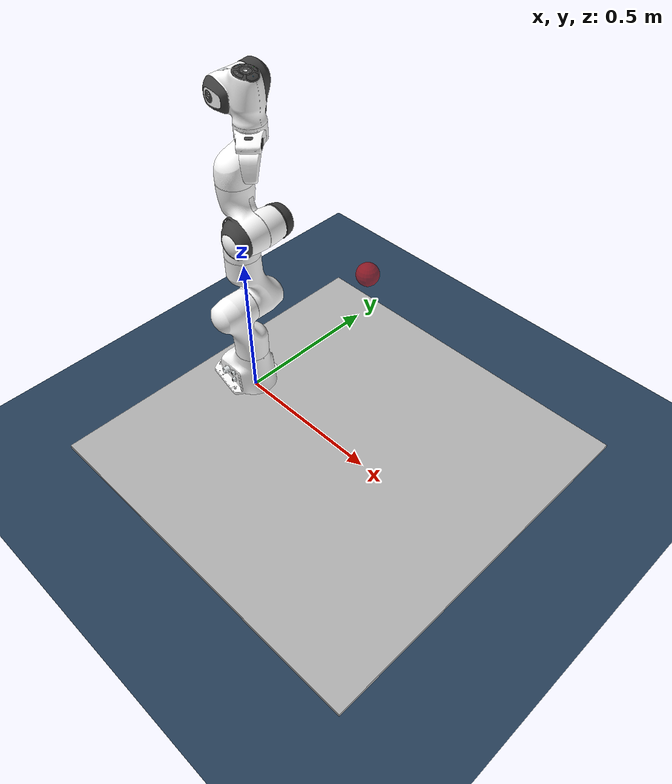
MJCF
<mujoco model="panda scene">
  <include file="../../common/skybox.xml"/>
  <include file="../../common/visual.xml"/>
  <include file="../../common/materials.xml"/>

  <statistic center="0.3 0 0.4" extent="1"/>

  <asset>
    <texture type="2d" name="groundplane" builtin="checker" mark="edge" rgb1="0.2 0.3 0.4"
        rgb2="0.1 0.2 0.3" markrgb="0.8 0.8 0.8" width="300" height="300"/>
    <material name="groundplane" texture="groundplane" texuniform="true" texrepeat="5 5"
        reflectance="0.2"/>
    <material name="table_mat" texture="table_original" />
    <texture type="cube" name="table_original" file="marble2.png" />
    <texture type="cube" name="table_easy0" file="marble.png" />
    <texture type="cube" name="table_easy1" file="metal2.png" />
    <texture type="cube" name="table_easy2" file="metal1.png" />
    <texture type="cube" name="table_easy3" file="skin.png" />
    <texture type="cube" name="table_easy4" file="light_wood_v2.png" />
    <texture type="cube" name="table_easy5" file="wood1.png" />
    <texture type="cube" name="table_easy6" file="woodb.png" />
    <texture type="cube" name="table_easy7" file="floor1.png" />
    <texture type="cube" name="table_easy8" file="granite.png" />
    <texture type="cube" name="table_easy9" file="metal.png" />
    <texture type="cube" name="table_hard0" file="city1.png" />
    <texture type="cube" name="table_hard1" file="city2.png" />
    <texture type="cube" name="table_hard2" file="city3.png" />
    <texture type="cube" name="table_hard3" file="foil.png" />
    <texture type="cube" name="table_hard4" file="silverRaw.png" />
    <texture type="cube" name="table_hard5" file="square.png" />
    <texture type="cube" name="table_hard6" file="darkwood.png" />
    <texture type="cube" name="table_hard7" file="brick1.png" />
    <texture type="cube" name="table_hard8" file="tennis.png" />
    <texture type="cube" name="table_hard9" file="wood4.png" />
  </asset>

  <worldbody>
      <light name='original' directional='false' diffuse='.7 .7 .7' specular='0.03 0.03 0.03' pos='-1 -1.0 4.0' dir='1 1.0 -4'/>

    <geom name="floor" size="2 2 0.05" type="plane" material="grid"/>

      <!-- ======= TABLE ======= -->
    <body name="table" pos="0.4 0 0">
      <geom pos="0 0 -0.01" size="0.6 0.6 0.02" type="box" rgba=".7 .7 .7 1." material="table_mat"/>
      <camera name="side_table" pos="0 -1.3 0.9" euler="1.2 0 0"/>
      <camera name="above_table" pos="1 0 1.35" euler="0 .8 1.57"/>
    </body>

    <site name="target_ball" pos="0.5 0.0 0.75" size="0.03" rgba="1 0 0 0.5" material="obj_color"/>

  </worldbody>

  <include file="panda_reach.xml"/>
</mujoco>

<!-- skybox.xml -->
<mujoco>
    <asset>
        <texture name="skybox" type="skybox" builtin="gradient" rgb1=".4 .6 .8" rgb2="0 0 0"
                 width="800" height="800" mark="random" markrgb="1 1 1"/>
    </asset>
</mujoco>

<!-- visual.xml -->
<mujoco>
    <visual>
        <headlight ambient=".4 .4 .4" diffuse=".8 .8 .8" specular="0.1 0.1 0.1"/>
        <map znear=".01"/>
        <quality shadowsize="2048"/>
    </visual>
</mujoco>

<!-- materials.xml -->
<!--
Common textures, colors and materials to be used throughout this suite. Some
materials such as xxx_highlight are activated on occurence of certain events,
for example receiving a positive reward.
-->
<mujoco>

  <asset>
    <texture name="grid" type="2d" builtin="checker" rgb1=".1 .2 .3" rgb2=".2 .3 .4" width="300" height="300" mark="edge" markrgb=".2 .3 .4"/>
    <material name="grid" texture="grid" texrepeat="1 1" texuniform="true" reflectance=".2"/>
    <material name="self" rgba=".7 .5 .3 1"/>
    <material name="self_default" rgba=".7 .5 .3 1"/>
    <material name="self_highlight" rgba="0 .5 .3 1"/>
    <material name="effector" rgba=".7 .4 .2 1"/>
    <material name="effector_default" rgba=".7 .4 .2 1"/>
    <material name="effector_highlight" rgba="0 .5 .3 1"/>
    <material name="decoration" rgba=".3 .5 .7 1"/>
    <material name="eye" rgba="0 .2 1 1"/>
    <material name="target" rgba=".6 .3 .3 1"/>
    <material name="target_default" rgba=".6 .3 .3 1"/>
    <material name="target_highlight" rgba=".6 .3 .3 .4"/>
    <material name="site" rgba=".5 .5 .5 .3"/>

<!--    for franka and unitree-->
    <material name="white" rgba="1 1 1 1"/>
    <material name="dark" specular="0" shininess="0.25" rgba="0.2 0.2 0.2 1"/>
    <material name="carbonfibre" rgba="0.25 0.25 0.25 1" specular="0" shininess="0.25"/>
    <material name="obj_color" rgba="1 0 0 1"/>
  </asset>
</mujoco>

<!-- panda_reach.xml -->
<mujoco model="panda">
  <compiler angle="radian" meshdir="assets" texturedir="assets/textures" autolimits="true"/>

  <option integrator="implicit"/>

  <default>
    <default class="panda">
      <material specular="0.5" shininess="0.25"/>
      <joint armature="0.1" damping="1" axis="0 0 1" range="-2.8973 2.8973"/>
      <general dyntype="none" biastype="affine" ctrlrange="-2.8973 2.8973" forcerange="-87 87"/>
      <default class="finger">
        <joint axis="0 1 0" type="slide" range="0 0.04"/>
      </default>

      <default class="visual">
        <geom type="mesh" contype="0" conaffinity="0" group="2"/>
      </default>
      <default class="collision">
        <geom type="mesh" group="3"/>
        <default class="fingertip_pad_collision_1">
          <geom type="box" size="0.0085 0.004 0.0085" pos="0 0.0055 0.0445"/>
        </default>
        <default class="fingertip_pad_collision_2">
          <geom type="box" size="0.003 0.002 0.003" pos="0.0055 0.002 0.05"/>
        </default>
        <default class="fingertip_pad_collision_3">
          <geom type="box" size="0.003 0.002 0.003" pos="-0.0055 0.002 0.05"/>
        </default>
        <default class="fingertip_pad_collision_4">
          <geom type="box" size="0.003 0.002 0.0035" pos="0.0055 0.002 0.0395"/>
        </default>
        <default class="fingertip_pad_collision_5">
          <geom type="box" size="0.003 0.002 0.0035" pos="-0.0055 0.002 0.0395"/>
        </default>
      </default>
    </default>
  </default>

  <asset>
    <material class="panda" name="off_white" rgba="0.901961 0.921569 0.929412 1"/>
    <material class="panda" name="black" rgba="0.25 0.25 0.25 1"/>
    <material class="panda" name="green" rgba="0 1 0 1"/>
    <material class="panda" name="light_blue" rgba="0.039216 0.541176 0.780392 1"/>

    <!-- Collision meshes -->
    <mesh name="link0_c" file="link0.stl"/>
    <mesh name="link1_c" file="link1.stl"/>
    <mesh name="link2_c" file="link2.stl"/>
    <mesh name="link3_c" file="link3.stl"/>
    <mesh name="link4_c" file="link4.stl"/>
    <mesh name="link5_c0" file="link5_collision_0.obj"/>
    <mesh name="link5_c1" file="link5_collision_1.obj"/>
    <mesh name="link5_c2" file="link5_collision_2.obj"/>
    <mesh name="link6_c" file="link6.stl"/>
    <mesh name="link7_c" file="link7.stl"/>
    <mesh name="hand_c" file="hand.stl"/>

    <!-- Visual meshes -->
    <mesh file="link0_0.obj"/>
    <mesh file="link0_1.obj"/>
    <mesh file="link0_2.obj"/>
    <mesh file="link0_3.obj"/>
    <mesh file="link0_4.obj"/>
    <mesh file="link0_5.obj"/>
    <mesh file="link0_7.obj"/>
    <mesh file="link0_8.obj"/>
    <mesh file="link0_9.obj"/>
    <mesh file="link0_10.obj"/>
    <mesh file="link0_11.obj"/>
    <mesh file="link1.obj"/>
    <mesh file="link2.obj"/>
    <mesh file="link3_0.obj"/>
    <mesh file="link3_1.obj"/>
    <mesh file="link3_2.obj"/>
    <mesh file="link3_3.obj"/>
    <mesh file="link4_0.obj"/>
    <mesh file="link4_1.obj"/>
    <mesh file="link4_2.obj"/>
    <mesh file="link4_3.obj"/>
    <mesh file="link5_0.obj"/>
    <mesh file="link5_1.obj"/>
    <mesh file="link5_2.obj"/>
    <mesh file="link6_0.obj"/>
    <mesh file="link6_1.obj"/>
    <mesh file="link6_2.obj"/>
    <mesh file="link6_3.obj"/>
    <mesh file="link6_4.obj"/>
    <mesh file="link6_5.obj"/>
    <mesh file="link6_6.obj"/>
    <mesh file="link6_7.obj"/>
    <mesh file="link6_8.obj"/>
    <mesh file="link6_9.obj"/>
    <mesh file="link6_10.obj"/>
    <mesh file="link6_11.obj"/>
    <mesh file="link6_12.obj"/>
    <mesh file="link6_13.obj"/>
    <mesh file="link6_14.obj"/>
    <mesh file="link6_15.obj"/>
    <mesh file="link6_16.obj"/>
    <mesh file="link7_0.obj"/>
    <mesh file="link7_1.obj"/>
    <mesh file="link7_2.obj"/>
    <mesh file="link7_3.obj"/>
    <mesh file="link7_4.obj"/>
    <mesh file="link7_5.obj"/>
    <mesh file="link7_6.obj"/>
    <mesh file="link7_7.obj"/>
    <mesh file="hand_0.obj"/>
    <mesh file="hand_1.obj"/>
    <mesh file="hand_2.obj"/>
    <mesh file="hand_3.obj"/>
    <mesh file="hand_4.obj"/>
    <mesh file="finger_0.obj"/>
    <mesh file="finger_1.obj"/>
  </asset>

  <worldbody>
    <light name="top" pos="0 0 2" mode="trackcom"/>
    <body name="link0" childclass="panda" pos="0 0 0.02">
      <inertial mass="0.629769" pos="-0.041018 -0.00014 0.049974"
          fullinertia="0.00315 0.00388 0.004285 8.2904e-7 0.00015 8.2299e-6"/>
      <geom mesh="link0_0" material="off_white" class="visual"/>
      <geom mesh="link0_1" material="black" class="visual"/>
      <geom mesh="link0_2" material="off_white" class="visual"/>
      <geom mesh="link0_3" material="black" class="visual"/>
      <geom mesh="link0_4" material="off_white" class="visual"/>
      <geom mesh="link0_5" material="black" class="visual"/>
      <geom mesh="link0_7" material="white" class="visual"/>
      <geom mesh="link0_8" material="white" class="visual"/>
      <geom mesh="link0_9" material="black" class="visual"/>
      <geom mesh="link0_10" material="off_white" class="visual"/>
      <geom mesh="link0_11" material="white" class="visual"/>
      <geom mesh="link0_c" class="collision"/>
      <body name="link1" pos="0 0 0.333">
        <inertial mass="4.970684" pos="0.003875 0.002081 -0.04762"
            fullinertia="0.70337 0.70661 0.0091170 -0.00013900 0.0067720 0.019169"/>
        <joint name="joint1"/>
        <geom material="white" mesh="link1" class="visual"/>
        <geom mesh="link1_c" class="collision"/>
        <body name="link2" quat="1 -1 0 0">
          <inertial mass="0.646926" pos="-0.003141 -0.02872 0.003495"
              fullinertia="0.0079620 2.8110e-2 2.5995e-2 -3.925e-3 1.0254e-2 7.04e-4"/>
          <joint name="joint2" range="-1.7628 1.7628"/>
          <geom material="white" mesh="link2" class="visual"/>
          <geom mesh="link2_c" class="collision"/>
          <body name="link3" pos="0 -0.316 0" quat="1 1 0 0">
            <joint name="joint3"/>
            <inertial mass="3.228604" pos="2.7518e-2 3.9252e-2 -6.6502e-2"
                fullinertia="3.7242e-2 3.6155e-2 1.083e-2 -4.761e-3 -1.1396e-2 -1.2805e-2"/>
            <geom mesh="link3_0" material="white" class="visual"/>
            <geom mesh="link3_1" material="white" class="visual"/>
            <geom mesh="link3_2" material="white" class="visual"/>
            <geom mesh="link3_3" material="black" class="visual"/>
            <geom mesh="link3_c" class="collision"/>
            <body name="link4" pos="0.0825 0 0" quat="1 1 0 0">
              <inertial mass="3.587895" pos="-5.317e-2 1.04419e-1 2.7454e-2"
                  fullinertia="2.5853e-2 1.9552e-2 2.8323e-2 7.796e-3 -1.332e-3 8.641e-3"/>
              <joint name="joint4" range="-3.0718 -0.0698"/>
              <geom mesh="link4_0" material="white" class="visual"/>
              <geom mesh="link4_1" material="white" class="visual"/>
              <geom mesh="link4_2" material="black" class="visual"/>
              <geom mesh="link4_3" material="white" class="visual"/>
              <geom mesh="link4_c" class="collision"/>
              <body name="link5" pos="-0.0825 0.384 0" quat="1 -1 0 0">
                <inertial mass="1.225946" pos="-1.1953e-2 4.1065e-2 -3.8437e-2"
                    fullinertia="3.5549e-2 2.9474e-2 8.627e-3 -2.117e-3 -4.037e-3 2.29e-4"/>
                <joint name="joint5"/>
                <geom mesh="link5_0" material="black" class="visual"/>
                <geom mesh="link5_1" material="white" class="visual"/>
                <geom mesh="link5_2" material="white" class="visual"/>
                <geom mesh="link5_c0" class="collision"/>
                <geom mesh="link5_c1" class="collision"/>
                <geom mesh="link5_c2" class="collision"/>
                <body name="link6" quat="1 1 0 0">
                  <inertial mass="1.666555" pos="6.0149e-2 -1.4117e-2 -1.0517e-2"
                      fullinertia="1.964e-3 4.354e-3 5.433e-3 1.09e-4 -1.158e-3 3.41e-4"/>
                  <joint name="joint6" range="-0.0175 3.7525"/>
                  <geom mesh="link6_0" material="off_white" class="visual"/>
                  <geom mesh="link6_1" material="white" class="visual"/>
                  <geom mesh="link6_2" material="black" class="visual"/>
                  <geom mesh="link6_3" material="white" class="visual"/>
                  <geom mesh="link6_4" material="white" class="visual"/>
                  <geom mesh="link6_5" material="white" class="visual"/>
                  <geom mesh="link6_6" material="white" class="visual"/>
                  <geom mesh="link6_7" material="light_blue" class="visual"/>
                  <geom mesh="link6_8" material="light_blue" class="visual"/>
                  <geom mesh="link6_9" material="black" class="visual"/>
                  <geom mesh="link6_10" material="black" class="visual"/>
                  <geom mesh="link6_11" material="white" class="visual"/>
                  <geom mesh="link6_12" material="green" class="visual"/>
                  <geom mesh="link6_13" material="white" class="visual"/>
                  <geom mesh="link6_14" material="black" class="visual"/>
                  <geom mesh="link6_15" material="black" class="visual"/>
                  <geom mesh="link6_16" material="white" class="visual"/>
                  <geom mesh="link6_c" class="collision"/>
                  <body name="link7" pos="0.088 0 0" quat="1 1 0 0">
                    <inertial mass="7.35522e-01" pos="1.0517e-2 -4.252e-3 6.1597e-2"
                        fullinertia="1.2516e-2 1.0027e-2 4.815e-3 -4.28e-4 -1.196e-3 -7.41e-4"/>
                    <joint name="joint7"/>
                    <geom mesh="link7_0" material="white" class="visual"/>
                    <geom mesh="link7_1" material="black" class="visual"/>
                    <geom mesh="link7_2" material="black" class="visual"/>
                    <geom mesh="link7_3" material="black" class="visual"/>
                    <geom mesh="link7_4" material="black" class="visual"/>
                    <geom mesh="link7_5" material="black" class="visual"/>
                    <geom mesh="link7_6" material="black" class="visual"/>
                    <geom mesh="link7_7" material="white" class="visual"/>
                    <geom mesh="link7_c" class="collision"/>
                    <body name="hand" pos="0 0 0.107" quat="0.9238795 0 0 -0.3826834">
                      <inertial mass="0.73" pos="-0.01 0 0.03" diaginertia="0.001 0.0025 0.0017"/>
                      <geom mesh="hand_0" material="off_white" class="visual"/>
                      <geom mesh="hand_1" material="black" class="visual"/>
                      <geom mesh="hand_2" material="black" class="visual"/>
                      <geom mesh="hand_3" material="white" class="visual"/>
                      <geom mesh="hand_4" material="off_white" class="visual"/>
                      <geom mesh="hand_c" class="collision"/>

                      <camera name="egocentric"  pos="0.04 0.0 0.04" euler="0 3 0" fovy="80" mode="targetbody"/>

                      <body name="left_finger" pos="0 0 0.0584">
                        <site name="left_finger" pos="0. 0 0.045" size="0.005" rgba="0 1 0 0." />
                        <inertial mass="0.015" pos="0 0 0" diaginertia="2.375e-6 2.375e-6 7.5e-7"/>
                        <joint name="finger_joint1" class="finger"/>
                        <geom mesh="finger_0" material="off_white" class="visual"/>
                        <geom mesh="finger_1" material="black" class="visual"/>
                        <geom mesh="finger_0" class="collision"/>
                        <geom class="fingertip_pad_collision_1"/>
                        <geom class="fingertip_pad_collision_2"/>
                        <geom class="fingertip_pad_collision_3"/>
                        <geom class="fingertip_pad_collision_4"/>
                        <geom class="fingertip_pad_collision_5"/>
                      </body>
                      <body name="right_finger" pos="0 0 0.0584" quat="0 0 0 1">
                        <site name="right_finger" pos="0. 0 0.045" size="0.005" rgba="0 1 0 0." />
                        <inertial mass="0.015" pos="0 0 0" diaginertia="2.375e-6 2.375e-6 7.5e-7"/>
                        <joint name="finger_joint2" class="finger"/>
                        <geom mesh="finger_0" material="off_white" class="visual"/>
                        <geom mesh="finger_1" material="black" class="visual"/>
                        <geom mesh="finger_0" class="collision"/>
                        <geom class="fingertip_pad_collision_1"/>
                        <geom class="fingertip_pad_collision_2"/>
                        <geom class="fingertip_pad_collision_3"/>
                        <geom class="fingertip_pad_collision_4"/>
                        <geom class="fingertip_pad_collision_5"/>
                      </body>
                    </body>
                  </body>
                </body>
              </body>
            </body>
          </body>
        </body>
      </body>
    </body>
  </worldbody>

  <tendon>
    <fixed name="split">
      <joint joint="finger_joint1" coef="0.5"/>
      <joint joint="finger_joint2" coef="0.5"/>
    </fixed>
  </tendon>

  <equality>
    <joint joint1="finger_joint1" joint2="finger_joint2" solimp="0.95 0.99 0.001" solref="0.005 1"/>
  </equality>

  <actuator>
    <general class="panda" name="actuator1" joint="joint1" gainprm="4500" biasprm="0 -4500 -450"/>
    <general class="panda" name="actuator2" joint="joint2" gainprm="4500" biasprm="0 -4500 -450"
        ctrlrange="-1.7628 1.7628"/>
    <general class="panda" name="actuator3" joint="joint3" gainprm="3500" biasprm="0 -3500 -350"/>
    <general class="panda" name="actuator4" joint="joint4" gainprm="3500" biasprm="0 -3500 -350"
        ctrlrange="-3.0718 -0.0698"/>
    <general class="panda" name="actuator5" joint="joint5" gainprm="2000" biasprm="0 -2000 -200"
        forcerange="-12 12"/>
    <general class="panda" name="actuator6" joint="joint6" gainprm="2000" biasprm="0 -2000 -200"
        forcerange="-12 12" ctrlrange="-0.0175 3.7525"/>
    <general class="panda" name="actuator7" joint="joint7" gainprm="2000" biasprm="0 -2000 -200"
        forcerange="-12 12"/>
    <!-- Remap original ctrlrange (0, 0.04) to (0, 255): 0.04 * 100 / 255 = 0.01568627451 -->
    <general class="panda" name="actuator8" tendon="split" forcerange="-100 100" ctrlrange="0 255"
        gainprm="0.01568627451 0 0" biasprm="0 -100 -10"/>
  </actuator>

</mujoco>
